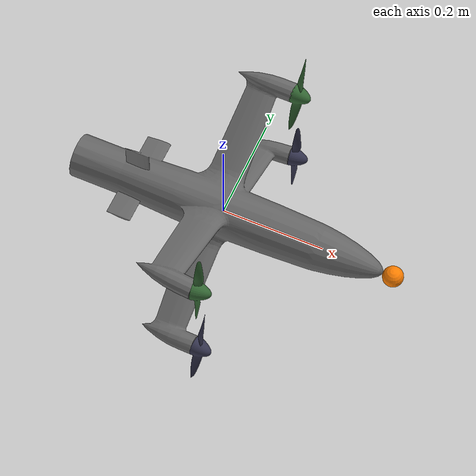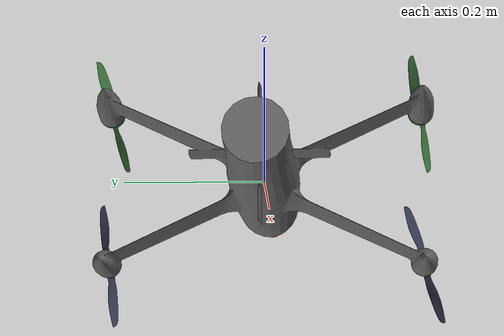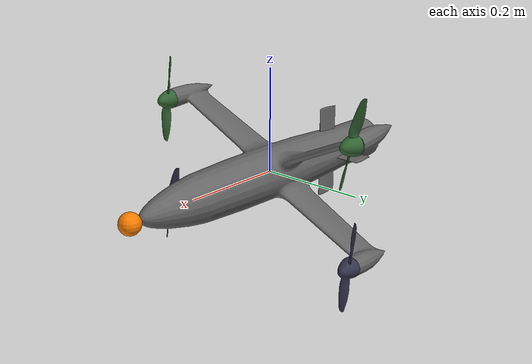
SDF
<?xml version="1.0"?>
<sdf version="1.9">
  <model name="waterdrop">
    <pose>0 0 0 0 0 0</pose>
    <static>0</static>

    <link name="base_link">
      <pose degrees="true">0 0 0 0 0 0</pose>
      <!-- \todo provide proper inertial : actual mass 4.0 kg -->
      <!-- Post-stall aero coefficients replaced with Viterna-Corrigan model -->
      <inertial>
        <pose>0 0 0 0 0 0</pose>
        <mass>4.3</mass>
        <inertia>
          <ixx>0.049</ixx>
          <ixy>0</ixy>
          <ixz>0</ixz>
          <iyy>0.082</iyy>
          <iyz>0</iyz>
          <izz>0.058</izz>
        </inertia>
      </inertial>
      <collision name="collision">
        <geometry>
          <mesh>
            <uri>model://waterdrop/meshes/base_link.STL</uri>
          </mesh>
        </geometry>
      </collision>
      <visual name="fuselage_visual">
        <geometry>
          <mesh>
            <uri>model://waterdrop/meshes/base_link.STL</uri>
          </mesh>
        </geometry>
        <material>
          <ambient>0.4 0.4 0.4</ambient>
          <diffuse>0.4 0.4 0.4</diffuse>
          <specular>0.3 0.3 0.3 1</specular>
        </material>
      </visual>

      <visual name="cp_aero">
        <pose>0.340 0 0 0 0 0</pose>
        <geometry>
          <sphere>
            <radius>0.02</radius>
          </sphere>
        </geometry>
        <material>
          <ambient>1 0.5 0</ambient>
          <diffuse>1 0.5 0</diffuse>
          <specular>0.1 0.1 0.1 1</specular>
        </material>
      </visual>

      <collision name="leg1_collision">
        <pose>-0.26 -0.25 -0.16 0 0 0</pose>
        <geometry>
          <sphere>
            <radius>0.01</radius>
          </sphere>
        </geometry>
      </collision>
      <collision name="leg2_collision">
        <pose>-0.26 0.25 0.16 0 0 0</pose>
        <geometry>
          <sphere>
            <radius>0.01</radius>
          </sphere>
        </geometry>
      </collision>
      <collision name="leg3_collision">
        <pose>-0.26 0.25 -0.16 0 0 0</pose>
        <geometry>
          <sphere>
            <radius>0.01</radius>
          </sphere>
        </geometry>
      </collision>
      <collision name="leg4_collision">
        <pose>-0.26 -0.25 0.16 0 0 0</pose>
        <geometry>
          <sphere>
            <radius>0.01</radius>
          </sphere>
        </geometry>
      </collision>
    </link>

    <!-- CCW -->
    <joint name='motor1_joint' type='revolute'>
      <pose relative_to="base_link" degrees="true">0.042836 -0.22635 -0.11141 0 90 0</pose>
      <child>motor1_link</child>
      <parent>base_link</parent>
      <axis>
        <xyz>0 0 1</xyz>
        <limit>
          <lower>-1e+16</lower>
          <upper>1e+16</upper>
        </limit>
        <dynamics>
          <damping>1e-5</damping>
        </dynamics>
      </axis>
    </joint>
    <link name="motor1_link">
      <pose relative_to="motor1_joint">0 0 0 0 0 0</pose>
      <inertial>
        <pose>0 0 0 0 0 0</pose>
        <mass>0.025</mass>
        <inertia>
          <ixx>0.000130417</ixx>
          <ixy>0</ixy>
          <ixz>0</ixz>
          <iyy>0.000130417</iyy>
          <iyz>0</iyz>
          <izz>0.000260417</izz>
        </inertia>
      </inertial>
      <collision name='link_1_collision'>
        <pose>0 0 0 0 0 0</pose>
        <geometry>
          <mesh>
            <scale>1 1 1</scale>
            <uri>model://waterdrop/meshes/ccw_rotor.STL</uri>
          </mesh>
        </geometry>
      </collision>
      <visual name='link_1_visual'>
        <pose>0 0 0 0 0 0</pose>
        <geometry>
          <mesh>
            <scale>1 1 1</scale>
            <uri>model://waterdrop/meshes/ccw_rotor.STL</uri>
          </mesh>
        </geometry>
        <material>
          <ambient>0.2 0.2 0.3</ambient>
          <diffuse>0.2 0.2 0.3</diffuse>
          <specular>0.1 0.1 0.1 1</specular>
        </material>
      </visual>
    </link>

    <!-- CCW -->
    <joint name='motor2_joint' type='revolute'>
      <pose relative_to="base_link" degrees="true">0.042836 0.22635 0.11141 0 90 0</pose>
      <child>motor2_link</child>
      <parent>base_link</parent>
      <axis>
        <xyz>0 0 1</xyz>
        <limit>
          <lower>-1e+16</lower>
          <upper>1e+16</upper>
        </limit>
        <dynamics>
          <damping>1e-5</damping>
        </dynamics>
      </axis>
    </joint>
    <link name="motor2_link">
      <pose relative_to="motor2_joint">0 0 0 0 0 0</pose>
      <inertial>
        <pose>0 0 0 0 0 0</pose>
        <mass>0.025</mass>
        <inertia>
          <ixx>0.000130417</ixx>
          <ixy>0</ixy>
          <ixz>0</ixz>
          <iyy>0.000130417</iyy>
          <iyz>0</iyz>
          <izz>0.000260417</izz>
        </inertia>
      </inertial>
      <collision name='link_2_collision'>
        <pose degrees="true">0 0 0 0 0 0</pose>
        <geometry>
          <mesh>
            <scale>1 1 1</scale>
            <uri>model://waterdrop/meshes/ccw_rotor.STL</uri>
          </mesh>
        </geometry>
      </collision>
      <visual name='link_2_visual'>
        <pose degrees="true">0 0 0 0 0 0</pose>
        <geometry>
          <mesh>
            <scale>1 1 1</scale>
            <uri>model://waterdrop/meshes/ccw_rotor.STL</uri>
          </mesh>
        </geometry>
        <material>
          <ambient>0.2 0.4 0.2</ambient>
          <diffuse>0.2 0.4 0.2</diffuse>
          <specular>0.1 0.1 0.1 1</specular>
        </material>
      </visual>
    </link>

    <!-- CW -->
    <joint name='motor3_joint' type='revolute'>
      <pose relative_to="base_link" degrees="true">0.042836 0.22635 -0.11141 0 90 0</pose>
      <child>motor3_link</child>
      <parent>base_link</parent>
      <axis>
        <xyz>0 0 1</xyz>
        <limit>
          <lower>-1e+16</lower>
          <upper>1e+16</upper>
        </limit>
        <dynamics>
          <damping>1e-5</damping>
        </dynamics>
      </axis>
    </joint>
    <link name="motor3_link">
      <pose relative_to="motor3_joint">0 0 0 0 0 0</pose>
      <inertial>
        <pose>0 0 0 0 0 0</pose>
        <mass>0.025</mass>
        <inertia>
          <ixx>0.000130417</ixx>
          <ixy>0</ixy>
          <ixz>0</ixz>
          <iyy>0.000130417</iyy>
          <iyz>0</iyz>
          <izz>0.000260417</izz>
        </inertia>
      </inertial>
      <collision name='link_3_collision'>
        <pose degrees="true">0 0 0 0 180 0</pose>
        <geometry>
          <mesh>
            <scale>1 1 1</scale>
            <uri>model://waterdrop/meshes/cw_rotor.STL</uri>
          </mesh>
        </geometry>
      </collision>
      <visual name='link_3_visual'>
        <pose degrees="true">0 0 0 0 180 0</pose>
        <geometry>
          <mesh>
            <scale>1 1 1</scale>
            <uri>model://waterdrop/meshes/cw_rotor.STL</uri>
          </mesh>
        </geometry>
        <material>
          <ambient>0.2 0.2 0.3</ambient>
          <diffuse>0.2 0.2 0.3</diffuse>
          <specular>0.1 0.1 0.1 1</specular>
        </material>
      </visual>
    </link>

    <!-- CW -->
    <joint name='motor4_joint' type='revolute'>
      <pose relative_to="base_link" degrees="true">0.042836 -0.22635 0.11141 0 90 0</pose>
      <child>motor4_link</child>
      <parent>base_link</parent>
      <axis>
        <xyz>0 0 1</xyz>
        <limit>
          <lower>-1e+16</lower>
          <upper>1e+16</upper>
        </limit>
        <dynamics>
          <damping>1e-5</damping>
        </dynamics>
      </axis>
    </joint>
    <link name="motor4_link">
      <pose relative_to="motor4_joint">0 0 0 0 0 0</pose>
      <inertial>
        <pose>0 0 0 0 0 0</pose>
        <mass>0.025</mass>
        <inertia>
          <ixx>0.000130417</ixx>
          <ixy>0</ixy>
          <ixz>0</ixz>
          <iyy>0.000130417</iyy>
          <iyz>0</iyz>
          <izz>0.000260417</izz>
        </inertia>
      </inertial>
      <collision name='link_4_collision'>
        <pose degrees="true">0 0 0 0 180 0</pose>
        <geometry>
          <mesh>
            <scale>1 1 1</scale>
            <uri>model://waterdrop/meshes/cw_rotor.STL</uri>
          </mesh>
        </geometry>
      </collision>
      <visual name='link_4_visual'>
        <pose degrees="true">0 0 0 0 180 0</pose>
        <geometry>
          <mesh>
            <scale>1 1 1</scale>
            <uri>model://waterdrop/meshes/cw_rotor.STL</uri>
          </mesh>
        </geometry>
        <material>
          <ambient>0.2 0.4 0.2</ambient>
          <diffuse>0.2 0.4 0.2</diffuse>
          <specular>0.1 0.1 0.1 1</specular>
        </material>
      </visual>
    </link>

    <!-- sensors -->
    <link name='imu_link'>
      <inertial>
        <pose>0 0 0 0 0 0</pose>
        <mass>0.15</mass>
        <inertia>
          <ixx>0.00002</ixx>
          <ixy>0</ixy>
          <ixz>0</ixz>
          <iyy>0.00002</iyy>
          <iyz>0</iyz>
          <izz>0.00002</izz>
        </inertia>
      </inertial>
      <sensor name="imu_sensor" type="imu">
        <pose degrees="true">0 0 0 180 0 0</pose>
        <always_on>1</always_on>
        <update_rate>1000.0</update_rate>
      </sensor>
    </link>
    <joint name='imu_joint' type='fixed'>
      <child>imu_link</child>
      <parent>base_link</parent>
      <axis>
        <xyz>0 0 1</xyz>
      </axis>
    </joint>

    <!-- plugins -->
    <plugin filename="gz-sim-joint-state-publisher-system"
      name="gz::sim::systems::JointStatePublisher">
    </plugin>
    <plugin filename="gz-sim-apply-joint-force-system"
      name="gz::sim::systems::ApplyJointForce">
      <joint_name>motor1_joint</joint_name>
    </plugin>
    <plugin filename="gz-sim-apply-joint-force-system"
      name="gz::sim::systems::ApplyJointForce">
      <joint_name>motor2_joint</joint_name>
    </plugin>
    <plugin filename="gz-sim-apply-joint-force-system"
      name="gz::sim::systems::ApplyJointForce">
      <joint_name>motor3_joint</joint_name>
    </plugin>
    <plugin filename="gz-sim-apply-joint-force-system"
      name="gz::sim::systems::ApplyJointForce">
      <joint_name>motor4_joint</joint_name>
    </plugin>

    <!-- prop1 (ccw) data-driven performance -->
    <plugin filename="PropellerPerformancePlugin"
        name="PropellerPerformancePlugin">
      <link_name>motor1_link</link_name>
      <joint_name>motor1_joint</joint_name>
      <performance_file>model://waterdrop/propellers/PER3_7x11E.csv</performance_file>
      <cw>false</cw>
    </plugin>

    <!-- prop2 (ccw) data-driven performance -->
    <plugin filename="PropellerPerformancePlugin"
        name="PropellerPerformancePlugin">
      <link_name>motor2_link</link_name>
      <joint_name>motor2_joint</joint_name>
      <performance_file>model://waterdrop/propellers/PER3_7x11E.csv</performance_file>
      <cw>false</cw>
    </plugin>

    <!-- prop3 (cw) data-driven performance -->
    <plugin filename="PropellerPerformancePlugin"
        name="PropellerPerformancePlugin">
      <link_name>motor3_link</link_name>
      <joint_name>motor3_joint</joint_name>
      <performance_file>model://waterdrop/propellers/PER3_7x11E.csv</performance_file>
      <cw>true</cw>
    </plugin>

    <!-- prop4 (cw) data-driven performance -->
    <plugin filename="PropellerPerformancePlugin"
        name="PropellerPerformancePlugin">
      <link_name>motor4_link</link_name>
      <joint_name>motor4_joint</joint_name>
      <performance_file>model://waterdrop/propellers/PER3_7x11E.csv</performance_file>
      <cw>true</cw>
    </plugin>

    <plugin filename="AdvancedLiftDragViternaPlugin"
            name="gz::sim::systems::AdvancedLiftDragViterna">
      <air_density>1.2250</air_density>
      <area>0.062000</area>
      <AR>3.3098</AR>
      <mac>0.0675</mac>

      <a0> 0.001840</a0>
      <CL0>-0.007595</CL0>
      <CD0> 0.025286</CD0>
      <Cem0>-0.003779</Cem0>
      <CLa> 4.126931</CLa>
      <CDa> 0.000000</CDa>
      <Cema>-0.297268</Cema>
      <eff>1.0000</eff>

      <alpha_stall> 0.209440</alpha_stall>
      <CLa_stall>-0.629333</CLa_stall>
      <CDa_stall> 0.811045</CDa_stall>
      <Cema_stall> 0.048509</Cema_stall>

      <CYb>-0.964428</CYb>
      <CYp> 0.000000</CYp>
      <CYr> 0.363501</CYr>
      <CY0>0.000000</CY0>

      <Cl0>0.000000</Cl0>
      <Clb> 0.001880</Clb>
      <Clp>-0.649620</Clp>
      <Clr> 0.161455</Clr>

      <Cn0>0.000000</Cn0>
      <Cnb> 0.002110</Cnb>
      <Cnp>-0.080727</Cnp>
      <Cnr>-0.142030</Cnr>

      <cp>0.340 0 0</cp>
      <forward>1 0 0</forward>
      <upward>0 0 1</upward>
      <link_name>base_link</link_name>
    </plugin>

    <plugin name="ArduPilotPlugin" filename="ArduPilotPlugin">
      <fdm_addr>127.0.0.1</fdm_addr>
      <fdm_port_in>9002</fdm_port_in>
      <connectionTimeoutMaxCount>5</connectionTimeoutMaxCount>
      <lock_step>1</lock_step>
      <modelXYZToAirplaneXForwardZDown degrees="true">0 0 0 180 0 0</modelXYZToAirplaneXForwardZDown>
      <gazeboXYZToNED degrees="true">0 0 0 180 0 90</gazeboXYZToNED>
      <imuName>imu_sensor</imuName>
      <!--
          SERVO1_FUNCTION   33 (Motor1 Front Right CCW)
          SERVO1_MAX        2000
          SERVO1_MIN        1000
          SERVO1_REVERSED   0
          SERVO1_TRIM       1500
       -->
      <control channel="0">
        <jointName>motor1_joint</jointName>
        <useForce>1</useForce>
        <multiplier>2100</multiplier>
        <offset>0</offset>
        <servo_min>1000</servo_min>
        <servo_max>2000</servo_max>
        <type>VELOCITY</type>
        <p_gain>0.05</p_gain>
        <i_gain>0.02</i_gain>
        <d_gain>0</d_gain>
        <i_max>2.5</i_max>
        <i_min>-2.5</i_min>
        <cmd_max>2.5</cmd_max>
        <cmd_min>-2.5</cmd_min>
      </control>

      <!--
          SERVO2_FUNCTION   34 (Motor2 Back Left CCW)
          SERVO2_MAX        2000
          SERVO2_MIN        1000
          SERVO2_REVERSED   0
          SERVO2_TRIM       1500
       -->
      <control channel="1">
        <jointName>motor2_joint</jointName>
        <useForce>1</useForce>
        <multiplier>2100</multiplier>
        <offset>0</offset>
        <servo_min>1000</servo_min>
        <servo_max>2000</servo_max>
        <type>VELOCITY</type>
        <p_gain>0.05</p_gain>
        <i_gain>0.02</i_gain>
        <d_gain>0</d_gain>
        <i_max>2.5</i_max>
        <i_min>-2.5</i_min>
        <cmd_max>2.5</cmd_max>
        <cmd_min>-2.5</cmd_min>
      </control>

      <!--
          SERVO3_FUNCTION   35 (Motor3 Front Left CW)
          SERVO3_MAX        2000
          SERVO3_MIN        1000
          SERVO3_REVERSED   0
          SERVO3_TRIM       1500
       -->
      <control channel="2">
        <jointName>motor3_joint</jointName>
        <useForce>1</useForce>
        <multiplier>-2100</multiplier>
        <offset>0</offset>
        <servo_min>1000</servo_min>
        <servo_max>2000</servo_max>
        <type>VELOCITY</type>
        <p_gain>0.05</p_gain>
        <i_gain>0.02</i_gain>
        <d_gain>0</d_gain>
        <i_max>2.5</i_max>
        <i_min>-2.5</i_min>
        <cmd_max>2.5</cmd_max>
        <cmd_min>-2.5</cmd_min>
      </control>

      <!--
          SERVO4_FUNCTION   36 (Motor4 Back Right CW)
          SERVO4_MAX        2000
          SERVO4_MIN        1000
          SERVO4_REVERSED   0
          SERVO4_TRIM       1500
       -->
      <control channel="3">
        <jointName>motor4_joint</jointName>
        <useForce>1</useForce>
        <multiplier>-2100</multiplier>
        <offset>0</offset>
        <servo_min>1000</servo_min>
        <servo_max>2000</servo_max>
        <type>VELOCITY</type>
        <p_gain>0.05</p_gain>
        <i_gain>0.02</i_gain>
        <d_gain>0</d_gain>
        <i_max>2.5</i_max>
        <i_min>-2.5</i_min>
        <cmd_max>2.5</cmd_max>
        <cmd_min>-2.5</cmd_min>
      </control>
    </plugin>
  </model>
</sdf>
